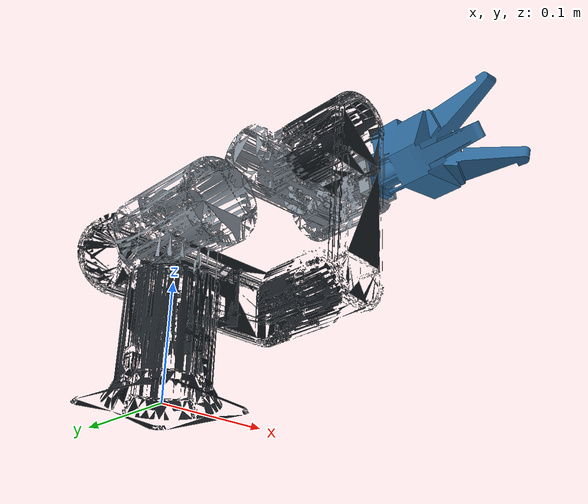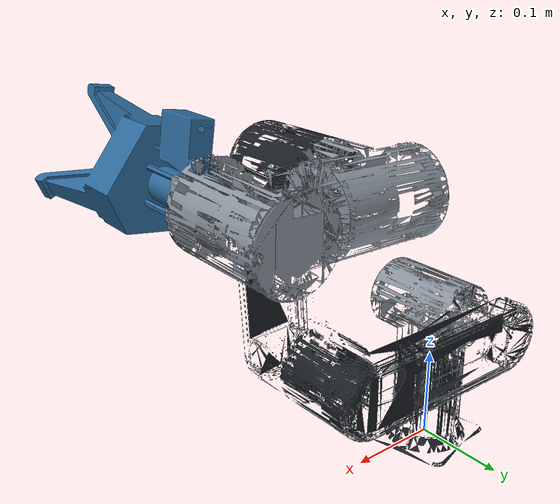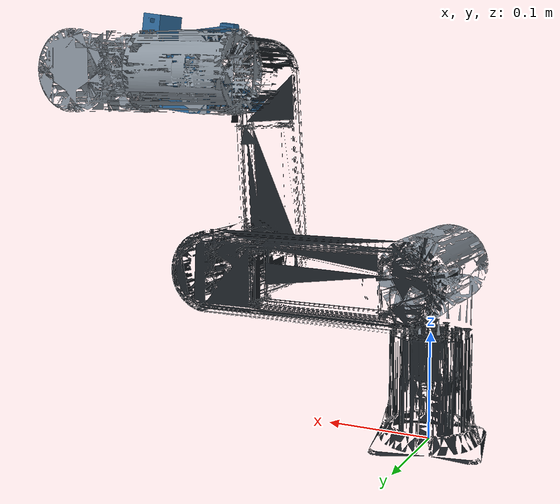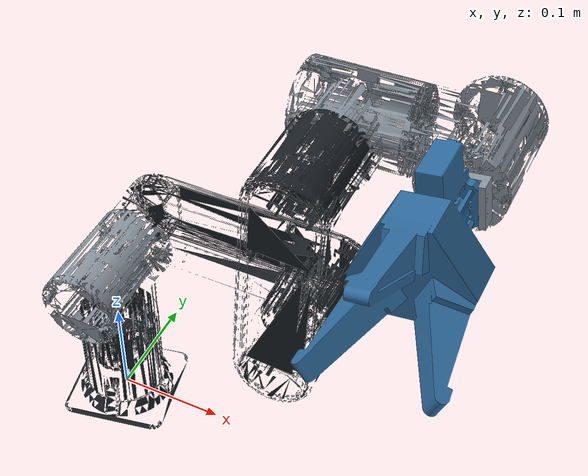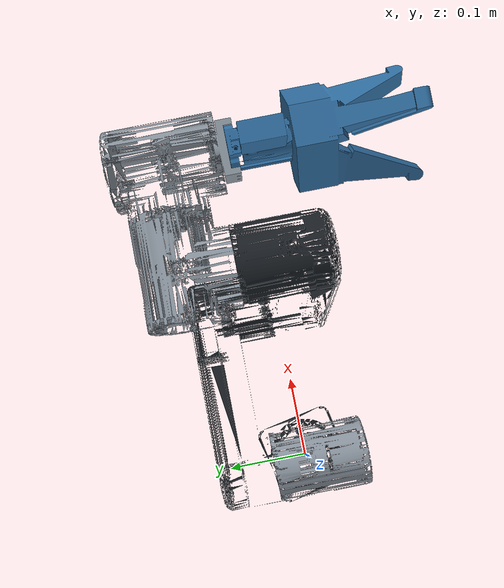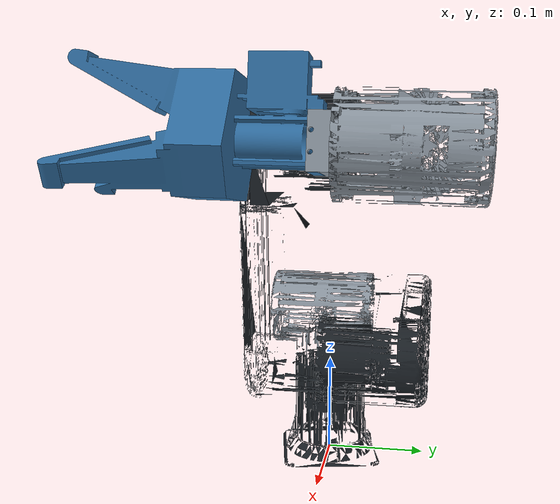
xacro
<?xml version="1.0"?>
<robot xmlns:xacro="http://www.ros.org/wiki/xacro" name="xiaou_six_axis_arm">
  <xacro:arg name="use_can_hardware" default="false"/>

  <material name="xiaou_dark"><color rgba="0.10 0.12 0.14 1.0"/></material>
  <material name="xiaou_metal"><color rgba="0.54 0.58 0.62 1.0"/></material>
  <material name="xiaou_tool"><color rgba="0.18 0.42 0.62 1.0"/></material>

  <xacro:macro name="mesh_geometry" params="path material">
    <visual>
      <geometry><mesh filename="package://xiaou_arm_description/meshes/visual/${path}.stl"/></geometry>
      <material name="${material}"/>
    </visual>
    <collision>
      <geometry><mesh filename="package://xiaou_arm_description/meshes/collision/${path}.stl"/></geometry>
    </collision>
  </xacro:macro>

  <link name="base_link">
    <xacro:mesh_geometry path="base_body" material="xiaou_dark"/>
  </link>

  <link name="link_1">
    <xacro:mesh_geometry path="joint_1_body" material="xiaou_metal"/>
  </link>
  <joint name="joint_1" type="continuous">
    <parent link="base_link"/><child link="link_1"/>
    <origin xyz="0 0 0" rpy="0 0 0"/><axis xyz="0 0 1"/>
  </joint>

  <link name="link_2">
    <xacro:mesh_geometry path="link_2_body" material="xiaou_dark"/>
  </link>
  <joint name="joint_2" type="continuous">
    <parent link="link_1"/><child link="link_2"/>
    <origin xyz="-0.000000035529 0 0.155999957265" rpy="0 0 0"/>
    <axis xyz="0 1 0"/>
  </joint>

  <link name="link_3">
    <xacro:mesh_geometry path="link_3_body" material="xiaou_dark"/>
  </link>
  <joint name="joint_3" type="continuous">
    <parent link="link_2"/><child link="link_3"/>
    <origin xyz="0.179999609116 -0.000000000534 0.000367474698" rpy="0 0 0"/>
    <axis xyz="0 1 0"/>
  </joint>

  <link name="link_4">
    <xacro:mesh_geometry path="joint_5_body" material="xiaou_metal"/>
  </link>
  <joint name="joint_4" type="continuous">
    <parent link="link_3"/><child link="link_4"/>
    <origin xyz="0.009787294801 0 0.179733751772" rpy="0 0 0"/>
    <axis xyz="0 1 0"/>
  </joint>

  <link name="link_5">
    <xacro:mesh_geometry path="joint_6_body" material="xiaou_metal"/>
  </link>
  <joint name="joint_5" type="continuous">
    <parent link="link_4"/><child link="link_5"/>
    <origin xyz="-0.000000000056 0.093 0.000000002269" rpy="0 0 0"/>
    <axis xyz="-0.999698993944 0 -0.024534088676"/>
  </joint>

  <link name="link_6">
    <xacro:mesh_geometry path="wrist_connector" material="xiaou_metal"/>
    <xacro:mesh_geometry path="gripper" material="xiaou_tool"/>
  </link>
  <joint name="joint_6" type="continuous">
    <parent link="link_5"/><child link="link_6"/>
    <origin xyz="0.105968179337 -0.000000000067 0.002600613812" rpy="0 0 0"/>
    <axis xyz="0.000416435776 0.999855935329 -0.016968652540"/>
  </joint>

  <link name="grasp_tcp"/>
  <joint name="link_6_to_grasp_tcp" type="fixed">
    <parent link="link_6"/><child link="grasp_tcp"/>
    <origin xyz="-0.000086410424 -0.207470106581 0.003520995402"
            rpy="1.553826859837 0 -0.000416495754"/>
  </joint>

  <link name="tip_tcp"/>
  <joint name="link_6_to_tip_tcp" type="fixed">
    <parent link="link_6"/><child link="tip_tcp"/>
    <origin xyz="-0.000099909813 -0.239881934509 0.004071059693"
            rpy="1.553826859837 0 -0.000416495754"/>
  </joint>

  <xacro:if value="$(arg use_can_hardware)">
  <ros2_control name="xiaou_arm_can" type="system">
    <hardware>
      <plugin>xiaou_arm_can_control/XiaouArmCanSystem</plugin>
      <param name="can_interface">can0</param>
      <param name="can_bitrate">500000</param>
      <param name="motion_enabled">false</param>
      <param name="protocol_confirmed">false</param>
      <param name="estop_verified">false</param>
      <param name="feedback_verified">false</param>
    </hardware>
    <joint name="joint_1">
      <command_interface name="position"/>
      <state_interface name="position"/>
      <state_interface name="velocity"/>
      <param name="node_id">1</param>
      <param name="zero_offset_rad">0.0</param>
      <param name="direction">1</param>
      <param name="position_min_rad">-6.283185307</param>
      <param name="position_max_rad">6.283185307</param>
      <param name="velocity_max_rad_s">1.0</param>
    </joint>
    <joint name="joint_2">
      <command_interface name="position"/>
      <state_interface name="position"/>
      <state_interface name="velocity"/>
      <param name="node_id">2</param>
      <param name="zero_offset_rad">0.0</param>
      <param name="direction">1</param>
      <param name="position_min_rad">-6.283185307</param>
      <param name="position_max_rad">6.283185307</param>
      <param name="velocity_max_rad_s">1.0</param>
    </joint>
    <joint name="joint_3">
      <command_interface name="position"/>
      <state_interface name="position"/>
      <state_interface name="velocity"/>
      <param name="node_id">3</param>
      <param name="zero_offset_rad">0.0</param>
      <param name="direction">1</param>
      <param name="position_min_rad">-6.283185307</param>
      <param name="position_max_rad">6.283185307</param>
      <param name="velocity_max_rad_s">1.0</param>
    </joint>
    <joint name="joint_4">
      <command_interface name="position"/>
      <state_interface name="position"/>
      <state_interface name="velocity"/>
      <param name="node_id">4</param>
      <param name="zero_offset_rad">0.0</param>
      <param name="direction">1</param>
      <param name="position_min_rad">-6.283185307</param>
      <param name="position_max_rad">6.283185307</param>
      <param name="velocity_max_rad_s">1.0</param>
    </joint>
    <joint name="joint_5">
      <command_interface name="position"/>
      <state_interface name="position"/>
      <state_interface name="velocity"/>
      <param name="node_id">5</param>
      <param name="zero_offset_rad">0.0</param>
      <param name="direction">1</param>
      <param name="position_min_rad">-6.283185307</param>
      <param name="position_max_rad">6.283185307</param>
      <param name="velocity_max_rad_s">1.0</param>
    </joint>
    <joint name="joint_6">
      <command_interface name="position"/>
      <state_interface name="position"/>
      <state_interface name="velocity"/>
      <param name="node_id">6</param>
      <param name="zero_offset_rad">0.0</param>
      <param name="direction">1</param>
      <param name="position_min_rad">-6.283185307</param>
      <param name="position_max_rad">6.283185307</param>
      <param name="velocity_max_rad_s">1.0</param>
    </joint>
  </ros2_control>
  </xacro:if>
</robot>
